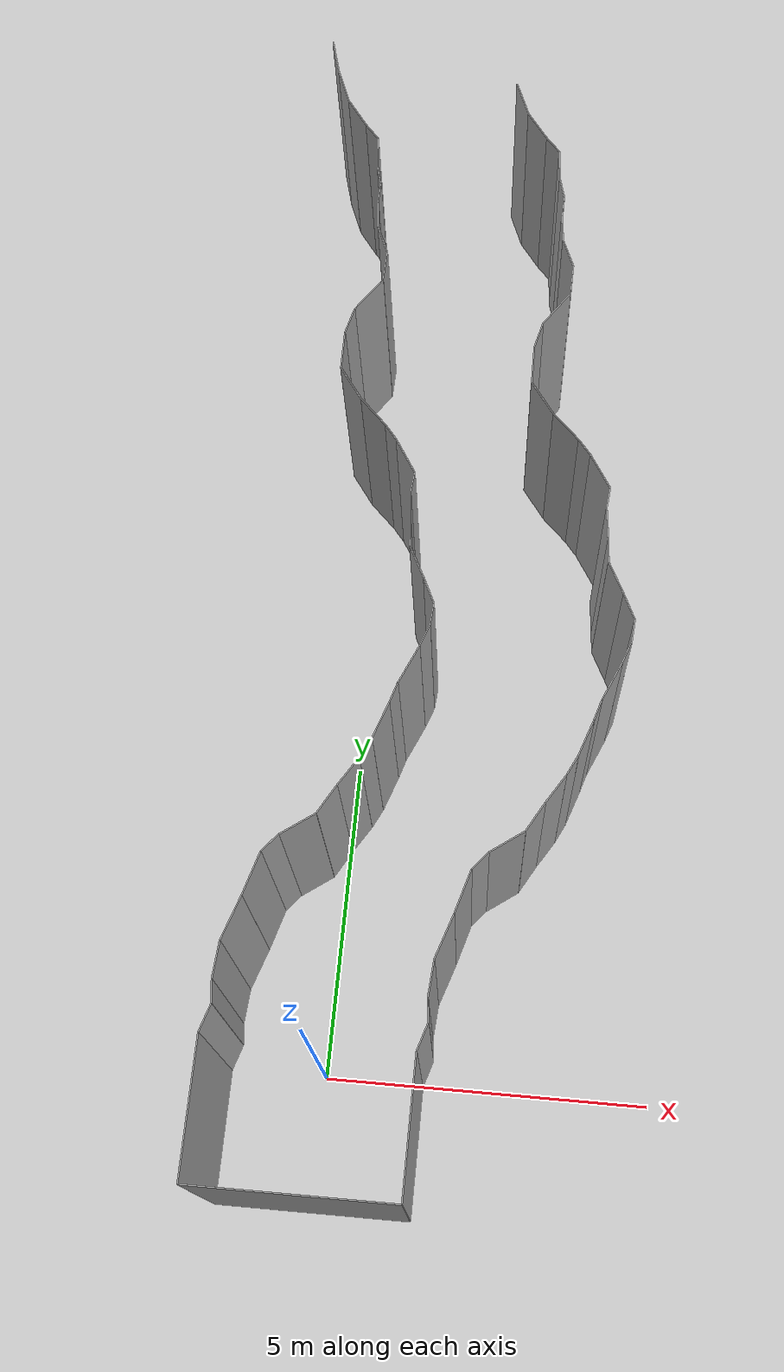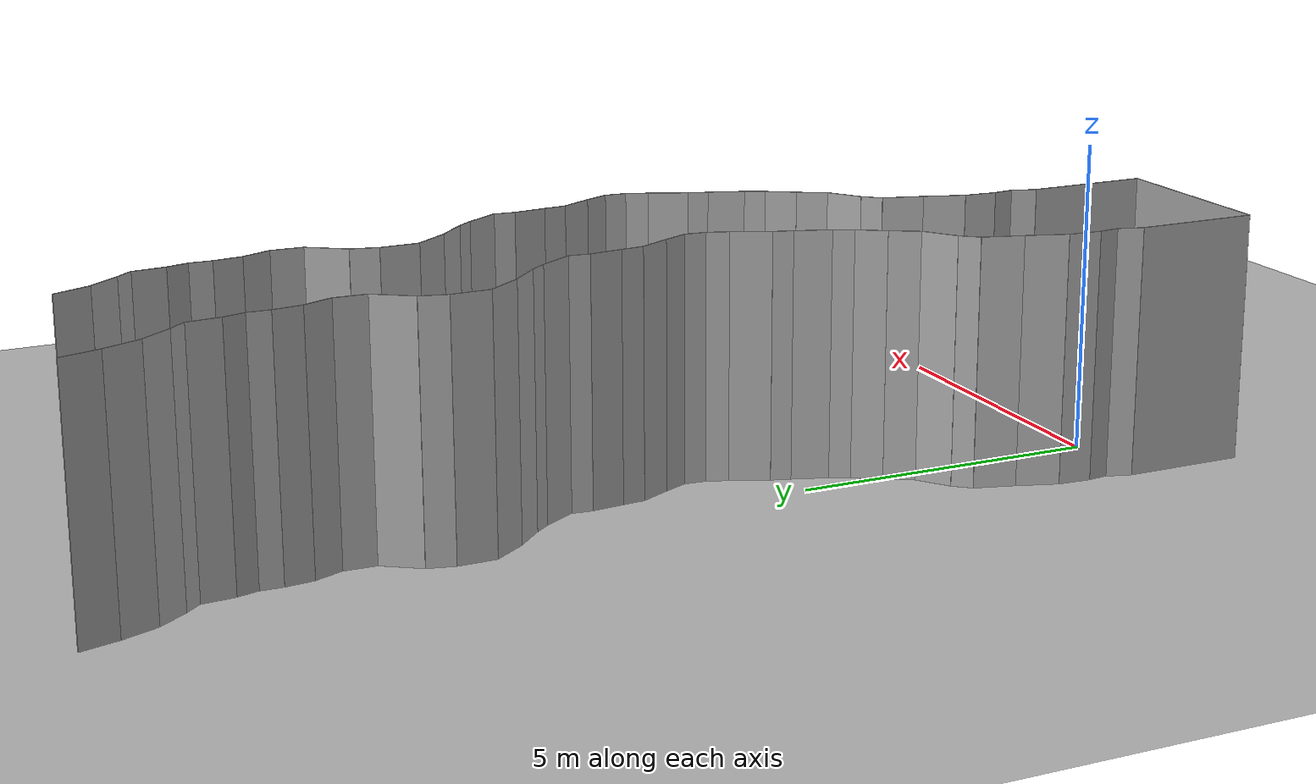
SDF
<sdf version="1.6">
 <world name="default">
  <model name="ground_plane">
   <static>1</static>
   <link name="link">
    <collision name="collision">
     <geometry><plane><normal>0 0 1</normal><size>200 200</size></plane></geometry>
     <surface><friction><ode><mu>100</mu><mu2>50</mu2></ode></friction></surface>
    </collision>
    <visual name="visual">
     <cast_shadows>0</cast_shadows>
     <geometry><plane><normal>0 0 1</normal><size>200 200</size></plane></geometry>
     <material>
      <script><uri>file://media/materials/scripts/gazebo.material</uri><name>Gazebo/Grey</name></script>
     </material>
    </visual>
   </link>
   <pose>0 100 0 0 -0 0</pose>
  </model>
  <model name="wall_back">
   <static>1</static>
   <pose>0.0 -2 2 0.0 0 0.0</pose>
   <link name="link">
    <collision name="collision"><geometry><box><size>3 0.02 4</size></box></geometry></collision>
    <visual name="visual">
     <material>
      <script><name>Gazebo/Grey</name><uri>file://media/materials/scripts/gazebo.material</uri></script>
     </material>
     <geometry><box><size>3 0.02 4</size></box></geometry>
    </visual>
   </link>
  </model>
  <model name="wall_left">
   <static>1</static>
   <pose>1.5 -1 2 0 0 0.00</pose>
   <link name="link">
    <collision name="collision"><geometry><box><size>0.02 2 4</size></box></geometry></collision>
    <visual name="visual">
     <material>
      <script><name>Gazebo/Grey</name><uri>file://media/materials/scripts/gazebo.material</uri></script>
     </material>
     <geometry><box><size>0.02 2 4</size></box></geometry>
    </visual>
   </link>
  </model>
  <model name="wall_right">
   <static>1</static>
   <pose>-1.5 -1 2 0 0 0.00</pose>
   <link name="link">
    <collision name="collision"><geometry><box><size>0.02 2 4</size></box></geometry></collision>
    <visual name="visual">
     <material>
      <script><name>Gazebo/Grey</name><uri>file://media/materials/scripts/gazebo.material</uri></script>
     </material>
     <geometry><box><size>0.02 2 4</size></box></geometry>
    </visual>
   </link>
  </model>
  <model name="wall_0">
   <static>1</static>
   <pose>-1.437584540808723 0.19914146632163043 2 0 0 -0.30372527100131724</pose>
   <link name="link">
    <collision name="collision"><geometry><box><size>0.02 0.41738717352 4</size></box></geometry></collision>
    <visual name="visual">
     <material>
      <script><name>Gazebo/Grey</name><uri>file://media/materials/scripts/gazebo.material</uri></script>
     </material>
     <geometry><box><size>0.02 0.41738717352 4</size></box></geometry>
    </visual>
   </link>
  </model>
  <model name="wall_1">
   <static>1</static>
   <pose>1.562415459191277 0.19914146632163043 2 0 0 -0.30372527100131724</pose>
   <link name="link">
    <collision name="collision"><geometry><box><size>0.02 0.41738717352 4</size></box></geometry></collision>
    <visual name="visual">
     <material>
      <script><name>Gazebo/Grey</name><uri>file://media/materials/scripts/gazebo.material</uri></script>
     </material>
     <geometry><box><size>0.02 0.41738717352 4</size></box></geometry>
    </visual>
   </link>
  </model>
  <model name="wall_2">
   <static>1</static>
   <pose>-1.3948634828476751 0.5653040838758768 2 0 0 0.11737362302510895</pose>
   <link name="link">
    <collision name="collision"><geometry><box><size>0.02 0.336356563182 4</size></box></geometry></collision>
    <visual name="visual">
     <material>
      <script><name>Gazebo/Grey</name><uri>file://media/materials/scripts/gazebo.material</uri></script>
     </material>
     <geometry><box><size>0.02 0.336356563182 4</size></box></geometry>
    </visual>
   </link>
  </model>
  <model name="wall_3">
   <static>1</static>
   <pose>1.6051365171523249 0.5653040838758768 2 0 0 0.11737362302510895</pose>
   <link name="link">
    <collision name="collision"><geometry><box><size>0.02 0.336356563182 4</size></box></geometry></collision>
    <visual name="visual">
     <material>
      <script><name>Gazebo/Grey</name><uri>file://media/materials/scripts/gazebo.material</uri></script>
     </material>
     <geometry><box><size>0.02 0.336356563182 4</size></box></geometry>
    </visual>
   </link>
  </model>
  <model name="wall_4">
   <static>1</static>
   <pose>-1.394409642289166 1.0028298655659633 2 0 0 -0.0743466219727799</pose>
   <link name="link">
    <collision name="collision"><geometry><box><size>0.02 0.542507904997 4</size></box></geometry></collision>
    <visual name="visual">
     <material>
      <script><name>Gazebo/Grey</name><uri>file://media/materials/scripts/gazebo.material</uri></script>
     </material>
     <geometry><box><size>0.02 0.542507904997 4</size></box></geometry>
    </visual>
   </link>
  </model>
  <model name="wall_5">
   <static>1</static>
   <pose>1.605590357710834 1.0028298655659633 2 0 0 -0.0743466219727799</pose>
   <link name="link">
    <collision name="collision"><geometry><box><size>0.02 0.542507904997 4</size></box></geometry></collision>
    <visual name="visual">
     <material>
      <script><name>Gazebo/Grey</name><uri>file://media/materials/scripts/gazebo.material</uri></script>
     </material>
     <geometry><box><size>0.02 0.542507904997 4</size></box></geometry>
    </visual>
   </link>
  </model>
  <model name="wall_6">
   <static>1</static>
   <pose>-1.2648227173220237 1.6014009821625925 2 0 0 -0.3219787499781896</pose>
   <link name="link">
    <collision name="collision"><geometry><box><size>0.02 0.691677510704 4</size></box></geometry></collision>
    <visual name="visual">
     <material>
      <script><name>Gazebo/Grey</name><uri>file://media/materials/scripts/gazebo.material</uri></script>
     </material>
     <geometry><box><size>0.02 0.691677510704 4</size></box></geometry>
    </visual>
   </link>
  </model>
  <model name="wall_7">
   <static>1</static>
   <pose>1.7351772826779763 1.6014009821625925 2 0 0 -0.3219787499781896</pose>
   <link name="link">
    <collision name="collision"><geometry><box><size>0.02 0.691677510704 4</size></box></geometry></collision>
    <visual name="visual">
     <material>
      <script><name>Gazebo/Grey</name><uri>file://media/materials/scripts/gazebo.material</uri></script>
     </material>
     <geometry><box><size>0.02 0.691677510704 4</size></box></geometry>
    </visual>
   </link>
  </model>
  <model name="wall_8">
   <static>1</static>
   <pose>-1.0613258140084927 2.2554493884134152 2 0 0 -0.28090844949199845</pose>
   <link name="link">
    <collision name="collision"><geometry><box><size>0.02 0.678560715086 4</size></box></geometry></collision>
    <visual name="visual">
     <material>
      <script><name>Gazebo/Grey</name><uri>file://media/materials/scripts/gazebo.material</uri></script>
     </material>
     <geometry><box><size>0.02 0.678560715086 4</size></box></geometry>
    </visual>
   </link>
  </model>
  <model name="wall_9">
   <static>1</static>
   <pose>1.9386741859915073 2.2554493884134152 2 0 0 -0.28090844949199845</pose>
   <link name="link">
    <collision name="collision"><geometry><box><size>0.02 0.678560715086 4</size></box></geometry></collision>
    <visual name="visual">
     <material>
      <script><name>Gazebo/Grey</name><uri>file://media/materials/scripts/gazebo.material</uri></script>
     </material>
     <geometry><box><size>0.02 0.678560715086 4</size></box></geometry>
    </visual>
   </link>
  </model>
  <model name="wall_10">
   <static>1</static>
   <pose>-0.8550352063341324 2.713623595888301 2 0 0 -0.7039182181570224</pose>
   <link name="link">
    <collision name="collision"><geometry><box><size>0.02 0.346819316942 4</size></box></geometry></collision>
    <visual name="visual">
     <material>
      <script><name>Gazebo/Grey</name><uri>file://media/materials/scripts/gazebo.material</uri></script>
     </material>
     <geometry><box><size>0.02 0.346819316942 4</size></box></geometry>
    </visual>
   </link>
  </model>
  <model name="wall_11">
   <static>1</static>
   <pose>2.1449647936658676 2.713623595888301 2 0 0 -0.7039182181570224</pose>
   <link name="link">
    <collision name="collision"><geometry><box><size>0.02 0.346819316942 4</size></box></geometry></collision>
    <visual name="visual">
     <material>
      <script><name>Gazebo/Grey</name><uri>file://media/materials/scripts/gazebo.material</uri></script>
     </material>
     <geometry><box><size>0.02 0.346819316942 4</size></box></geometry>
    </visual>
   </link>
  </model>
  <model name="wall_12">
   <static>1</static>
   <pose>-0.49591066048191346 3.0213233668450896 2 0 0 -0.9528142580755041</pose>
   <link name="link">
    <collision name="collision"><geometry><box><size>0.02 0.605833688841 4</size></box></geometry></collision>
    <visual name="visual">
     <material>
      <script><name>Gazebo/Grey</name><uri>file://media/materials/scripts/gazebo.material</uri></script>
     </material>
     <geometry><box><size>0.02 0.605833688841 4</size></box></geometry>
    </visual>
   </link>
  </model>
  <model name="wall_13">
   <static>1</static>
   <pose>2.5040893395180865 3.0213233668450896 2 0 0 -0.9528142580755041</pose>
   <link name="link">
    <collision name="collision"><geometry><box><size>0.02 0.605833688841 4</size></box></geometry></collision>
    <visual name="visual">
     <material>
      <script><name>Gazebo/Grey</name><uri>file://media/materials/scripts/gazebo.material</uri></script>
     </material>
     <geometry><box><size>0.02 0.605833688841 4</size></box></geometry>
    </visual>
   </link>
  </model>
  <model name="wall_14">
   <static>1</static>
   <pose>-0.1232289149607314 3.4174996638244646 2 0 0 -0.5180971347103647</pose>
   <link name="link">
    <collision name="collision"><geometry><box><size>0.02 0.508006871808 4</size></box></geometry></collision>
    <visual name="visual">
     <material>
      <script><name>Gazebo/Grey</name><uri>file://media/materials/scripts/gazebo.material</uri></script>
     </material>
     <geometry><box><size>0.02 0.508006871808 4</size></box></geometry>
    </visual>
   </link>
  </model>
  <model name="wall_15">
   <static>1</static>
   <pose>2.8767710850392687 3.4174996638244646 2 0 0 -0.5180971347103647</pose>
   <link name="link">
    <collision name="collision"><geometry><box><size>0.02 0.508006871808 4</size></box></geometry></collision>
    <visual name="visual">
     <material>
      <script><name>Gazebo/Grey</name><uri>file://media/materials/scripts/gazebo.material</uri></script>
     </material>
     <geometry><box><size>0.02 0.508006871808 4</size></box></geometry>
    </visual>
   </link>
  </model>
  <model name="wall_16">
   <static>1</static>
   <pose>0.13868933347629092 3.8528305048694746 2 0 0 -0.5651544958231043</pose>
   <link name="link">
    <collision name="collision"><geometry><box><size>0.02 0.508373085545 4</size></box></geometry></collision>
    <visual name="visual">
     <material>
      <script><name>Gazebo/Grey</name><uri>file://media/materials/scripts/gazebo.material</uri></script>
     </material>
     <geometry><box><size>0.02 0.508373085545 4</size></box></geometry>
    </visual>
   </link>
  </model>
  <model name="wall_17">
   <static>1</static>
   <pose>3.138689333476291 3.8528305048694746 2 0 0 -0.5651544958231043</pose>
   <link name="link">
    <collision name="collision"><geometry><box><size>0.02 0.508373085545 4</size></box></geometry></collision>
    <visual name="visual">
     <material>
      <script><name>Gazebo/Grey</name><uri>file://media/materials/scripts/gazebo.material</uri></script>
     </material>
     <geometry><box><size>0.02 0.508373085545 4</size></box></geometry>
    </visual>
   </link>
  </model>
  <model name="wall_18">
   <static>1</static>
   <pose>0.3503488147982492 4.220972523937231 2 0 0 -0.4573250543680752</pose>
   <link name="link">
    <collision name="collision"><geometry><box><size>0.02 0.34211701242 4</size></box></geometry></collision>
    <visual name="visual">
     <material>
      <script><name>Gazebo/Grey</name><uri>file://media/materials/scripts/gazebo.material</uri></script>
     </material>
     <geometry><box><size>0.02 0.34211701242 4</size></box></geometry>
    </visual>
   </link>
  </model>
  <model name="wall_19">
   <static>1</static>
   <pose>3.350348814798249 4.220972523937231 2 0 0 -0.4573250543680752</pose>
   <link name="link">
    <collision name="collision"><geometry><box><size>0.02 0.34211701242 4</size></box></geometry></collision>
    <visual name="visual">
     <material>
      <script><name>Gazebo/Grey</name><uri>file://media/materials/scripts/gazebo.material</uri></script>
     </material>
     <geometry><box><size>0.02 0.34211701242 4</size></box></geometry>
    </visual>
   </link>
  </model>
  <model name="wall_20">
   <static>1</static>
   <pose>0.5238072433691114 4.657932478540906 2 0 0 -0.33261391376609967</pose>
   <link name="link">
    <collision name="collision"><geometry><box><size>0.02 0.599835664279 4</size></box></geometry></collision>
    <visual name="visual">
     <material>
      <script><name>Gazebo/Grey</name><uri>file://media/materials/scripts/gazebo.material</uri></script>
     </material>
     <geometry><box><size>0.02 0.599835664279 4</size></box></geometry>
    </visual>
   </link>
  </model>
  <model name="wall_21">
   <static>1</static>
   <pose>3.523807243369111 4.657932478540906 2 0 0 -0.33261391376609967</pose>
   <link name="link">
    <collision name="collision"><geometry><box><size>0.02 0.599835664279 4</size></box></geometry></collision>
    <visual name="visual">
     <material>
      <script><name>Gazebo/Grey</name><uri>file://media/materials/scripts/gazebo.material</uri></script>
     </material>
     <geometry><box><size>0.02 0.599835664279 4</size></box></geometry>
    </visual>
   </link>
  </model>
  <model name="wall_22">
   <static>1</static>
   <pose>0.6687756915646734 5.097011091971359 2 0 0 -0.29358537960156844</pose>
   <link name="link">
    <collision name="collision"><geometry><box><size>0.02 0.325107862448 4</size></box></geometry></collision>
    <visual name="visual">
     <material>
      <script><name>Gazebo/Grey</name><uri>file://media/materials/scripts/gazebo.material</uri></script>
     </material>
     <geometry><box><size>0.02 0.325107862448 4</size></box></geometry>
    </visual>
   </link>
  </model>
  <model name="wall_23">
   <static>1</static>
   <pose>3.668775691564673 5.097011091971359 2 0 0 -0.29358537960156844</pose>
   <link name="link">
    <collision name="collision"><geometry><box><size>0.02 0.325107862448 4</size></box></geometry></collision>
    <visual name="visual">
     <material>
      <script><name>Gazebo/Grey</name><uri>file://media/materials/scripts/gazebo.material</uri></script>
     </material>
     <geometry><box><size>0.02 0.325107862448 4</size></box></geometry>
    </visual>
   </link>
  </model>
  <model name="wall_24">
   <static>1</static>
   <pose>0.8478761278525622 5.553248437661183 2 0 0 -0.413889641027671</pose>
   <link name="link">
    <collision name="collision"><geometry><box><size>0.02 0.656729357501 4</size></box></geometry></collision>
    <visual name="visual">
     <material>
      <script><name>Gazebo/Grey</name><uri>file://media/materials/scripts/gazebo.material</uri></script>
     </material>
     <geometry><box><size>0.02 0.656729357501 4</size></box></geometry>
    </visual>
   </link>
  </model>
  <model name="wall_25">
   <static>1</static>
   <pose>3.847876127852562 5.553248437661183 2 0 0 -0.413889641027671</pose>
   <link name="link">
    <collision name="collision"><geometry><box><size>0.02 0.656729357501 4</size></box></geometry></collision>
    <visual name="visual">
     <material>
      <script><name>Gazebo/Grey</name><uri>file://media/materials/scripts/gazebo.material</uri></script>
     </material>
     <geometry><box><size>0.02 0.656729357501 4</size></box></geometry>
    </visual>
   </link>
  </model>
  <model name="wall_26">
   <static>1</static>
   <pose>1.0405157936755771 6.02449647832085 2 0 0 -0.3411937799384117</pose>
   <link name="link">
    <collision name="collision"><geometry><box><size>0.02 0.362091112633 4</size></box></geometry></collision>
    <visual name="visual">
     <material>
      <script><name>Gazebo/Grey</name><uri>file://media/materials/scripts/gazebo.material</uri></script>
     </material>
     <geometry><box><size>0.02 0.362091112633 4</size></box></geometry>
    </visual>
   </link>
  </model>
  <model name="wall_27">
   <static>1</static>
   <pose>4.040515793675577 6.02449647832085 2 0 0 -0.3411937799384117</pose>
   <link name="link">
    <collision name="collision"><geometry><box><size>0.02 0.362091112633 4</size></box></geometry></collision>
    <visual name="visual">
     <material>
      <script><name>Gazebo/Grey</name><uri>file://media/materials/scripts/gazebo.material</uri></script>
     </material>
     <geometry><box><size>0.02 0.362091112633 4</size></box></geometry>
    </visual>
   </link>
  </model>
  <model name="wall_28">
   <static>1</static>
   <pose>1.1144388519540367 6.371388264647776 2 0 0 -0.07554691758566276</pose>
   <link name="link">
    <collision name="collision"><geometry><box><size>0.02 0.353573383636 4</size></box></geometry></collision>
    <visual name="visual">
     <material>
      <script><name>Gazebo/Grey</name><uri>file://media/materials/scripts/gazebo.material</uri></script>
     </material>
     <geometry><box><size>0.02 0.353573383636 4</size></box></geometry>
    </visual>
   </link>
  </model>
  <model name="wall_29">
   <static>1</static>
   <pose>4.114438851954037 6.371388264647776 2 0 0 -0.07554691758566276</pose>
   <link name="link">
    <collision name="collision"><geometry><box><size>0.02 0.353573383636 4</size></box></geometry></collision>
    <visual name="visual">
     <material>
      <script><name>Gazebo/Grey</name><uri>file://media/materials/scripts/gazebo.material</uri></script>
     </material>
     <geometry><box><size>0.02 0.353573383636 4</size></box></geometry>
    </visual>
   </link>
  </model>
  <model name="wall_30">
   <static>1</static>
   <pose>1.033647632054986 6.745813201294141 2 0 0 0.4435163748197816</pose>
   <link name="link">
    <collision name="collision"><geometry><box><size>0.02 0.43873316639 4</size></box></geometry></collision>
    <visual name="visual">
     <material>
      <script><name>Gazebo/Grey</name><uri>file://media/materials/scripts/gazebo.material</uri></script>
     </material>
     <geometry><box><size>0.02 0.43873316639 4</size></box></geometry>
    </visual>
   </link>
  </model>
  <model name="wall_31">
   <static>1</static>
   <pose>4.033647632054986 6.745813201294141 2 0 0 0.4435163748197816</pose>
   <link name="link">
    <collision name="collision"><geometry><box><size>0.02 0.43873316639 4</size></box></geometry></collision>
    <visual name="visual">
     <material>
      <script><name>Gazebo/Grey</name><uri>file://media/materials/scripts/gazebo.material</uri></script>
     </material>
     <geometry><box><size>0.02 0.43873316639 4</size></box></geometry>
    </visual>
   </link>
  </model>
  <model name="wall_32">
   <static>1</static>
   <pose>0.8125762892889469 7.190634687882686 2 0 0 0.47524685223339913</pose>
   <link name="link">
    <collision name="collision"><geometry><box><size>0.02 0.554846142927 4</size></box></geometry></collision>
    <visual name="visual">
     <material>
      <script><name>Gazebo/Grey</name><uri>file://media/materials/scripts/gazebo.material</uri></script>
     </material>
     <geometry><box><size>0.02 0.554846142927 4</size></box></geometry>
    </visual>
   </link>
  </model>
  <model name="wall_33">
   <static>1</static>
   <pose>3.812576289288947 7.190634687882686 2 0 0 0.47524685223339913</pose>
   <link name="link">
    <collision name="collision"><geometry><box><size>0.02 0.554846142927 4</size></box></geometry></collision>
    <visual name="visual">
     <material>
      <script><name>Gazebo/Grey</name><uri>file://media/materials/scripts/gazebo.material</uri></script>
     </material>
     <geometry><box><size>0.02 0.554846142927 4</size></box></geometry>
    </visual>
   </link>
  </model>
  <model name="wall_34">
   <static>1</static>
   <pose>0.6719074328562987 7.618957834760673 2 0 0 0.07545331405848138</pose>
   <link name="link">
    <collision name="collision"><geometry><box><size>0.02 0.364324907448 4</size></box></geometry></collision>
    <visual name="visual">
     <material>
      <script><name>Gazebo/Grey</name><uri>file://media/materials/scripts/gazebo.material</uri></script>
     </material>
     <geometry><box><size>0.02 0.364324907448 4</size></box></geometry>
    </visual>
   </link>
  </model>
  <model name="wall_35">
   <static>1</static>
   <pose>3.671907432856299 7.618957834760673 2 0 0 0.07545331405848138</pose>
   <link name="link">
    <collision name="collision"><geometry><box><size>0.02 0.364324907448 4</size></box></geometry></collision>
    <visual name="visual">
     <material>
      <script><name>Gazebo/Grey</name><uri>file://media/materials/scripts/gazebo.material</uri></script>
     </material>
     <geometry><box><size>0.02 0.364324907448 4</size></box></geometry>
    </visual>
   </link>
  </model>
  <model name="wall_36">
   <static>1</static>
   <pose>0.6308984654413259 8.063215261044814 2 0 0 0.10349735906878753</pose>
   <link name="link">
    <collision name="collision"><geometry><box><size>0.02 0.528052186482 4</size></box></geometry></collision>
    <visual name="visual">
     <material>
      <script><name>Gazebo/Grey</name><uri>file://media/materials/scripts/gazebo.material</uri></script>
     </material>
     <geometry><box><size>0.02 0.528052186482 4</size></box></geometry>
    </visual>
   </link>
  </model>
  <model name="wall_37">
   <static>1</static>
   <pose>3.6308984654413257 8.063215261044814 2 0 0 0.10349735906878753</pose>
   <link name="link">
    <collision name="collision"><geometry><box><size>0.02 0.528052186482 4</size></box></geometry></collision>
    <visual name="visual">
     <material>
      <script><name>Gazebo/Grey</name><uri>file://media/materials/scripts/gazebo.material</uri></script>
     </material>
     <geometry><box><size>0.02 0.528052186482 4</size></box></geometry>
    </visual>
   </link>
  </model>
  <model name="wall_38">
   <static>1</static>
   <pose>0.6196103875067481 8.495250098855857 2 0 0 -0.09409633765073891</pose>
   <link name="link">
    <collision name="collision"><geometry><box><size>0.02 0.340348767814 4</size></box></geometry></collision>
    <visual name="visual">
     <material>
      <script><name>Gazebo/Grey</name><uri>file://media/materials/scripts/gazebo.material</uri></script>
     </material>
     <geometry><box><size>0.02 0.340348767814 4</size></box></geometry>
    </visual>
   </link>
  </model>
  <model name="wall_39">
   <static>1</static>
   <pose>3.6196103875067482 8.495250098855857 2 0 0 -0.09409633765073891</pose>
   <link name="link">
    <collision name="collision"><geometry><box><size>0.02 0.340348767814 4</size></box></geometry></collision>
    <visual name="visual">
     <material>
      <script><name>Gazebo/Grey</name><uri>file://media/materials/scripts/gazebo.material</uri></script>
     </material>
     <geometry><box><size>0.02 0.340348767814 4</size></box></geometry>
    </visual>
   </link>
  </model>
  <model name="wall_40">
   <static>1</static>
   <pose>0.4683702272360365 8.930815091683186 2 0 0 0.560999575177464</pose>
   <link name="link">
    <collision name="collision"><geometry><box><size>0.02 0.628642890016 4</size></box></geometry></collision>
    <visual name="visual">
     <material>
      <script><name>Gazebo/Grey</name><uri>file://media/materials/scripts/gazebo.material</uri></script>
     </material>
     <geometry><box><size>0.02 0.628642890016 4</size></box></geometry>
    </visual>
   </link>
  </model>
  <model name="wall_41">
   <static>1</static>
   <pose>3.4683702272360364 8.930815091683186 2 0 0 0.560999575177464</pose>
   <link name="link">
    <collision name="collision"><geometry><box><size>0.02 0.628642890016 4</size></box></geometry></collision>
    <visual name="visual">
     <material>
      <script><name>Gazebo/Grey</name><uri>file://media/materials/scripts/gazebo.material</uri></script>
     </material>
     <geometry><box><size>0.02 0.628642890016 4</size></box></geometry>
    </visual>
   </link>
  </model>
  <model name="wall_42">
   <static>1</static>
   <pose>0.20286799794410917 9.317444267156924 2 0 0 0.6842045653073365</pose>
   <link name="link">
    <collision name="collision"><geometry><box><size>0.02 0.310962243647 4</size></box></geometry></collision>
    <visual name="visual">
     <material>
      <script><name>Gazebo/Grey</name><uri>file://media/materials/scripts/gazebo.material</uri></script>
     </material>
     <geometry><box><size>0.02 0.310962243647 4</size></box></geometry>
    </visual>
   </link>
  </model>
  <model name="wall_43">
   <static>1</static>
   <pose>3.202867997944109 9.317444267156924 2 0 0 0.6842045653073365</pose>
   <link name="link">
    <collision name="collision"><geometry><box><size>0.02 0.310962243647 4</size></box></geometry></collision>
    <visual name="visual">
     <material>
      <script><name>Gazebo/Grey</name><uri>file://media/materials/scripts/gazebo.material</uri></script>
     </material>
     <geometry><box><size>0.02 0.310962243647 4</size></box></geometry>
    </visual>
   </link>
  </model>
  <model name="wall_44">
   <static>1</static>
   <pose>-0.10581616463823756 9.644450860844644 2 0 0 0.7947289484488541</pose>
   <link name="link">
    <collision name="collision"><geometry><box><size>0.02 0.589656704895 4</size></box></geometry></collision>
    <visual name="visual">
     <material>
      <script><name>Gazebo/Grey</name><uri>file://media/materials/scripts/gazebo.material</uri></script>
     </material>
     <geometry><box><size>0.02 0.589656704895 4</size></box></geometry>
    </visual>
   </link>
  </model>
  <model name="wall_45">
   <static>1</static>
   <pose>2.8941838353617624 9.644450860844644 2 0 0 0.7947289484488541</pose>
   <link name="link">
    <collision name="collision"><geometry><box><size>0.02 0.589656704895 4</size></box></geometry></collision>
    <visual name="visual">
     <material>
      <script><name>Gazebo/Grey</name><uri>file://media/materials/scripts/gazebo.material</uri></script>
     </material>
     <geometry><box><size>0.02 0.589656704895 4</size></box></geometry>
    </visual>
   </link>
  </model>
  <model name="wall_46">
   <static>1</static>
   <pose>-0.5037890396391627 10.109348792570279 2 0 0 0.6279122752231615</pose>
   <link name="link">
    <collision name="collision"><geometry><box><size>0.02 0.638554864892 4</size></box></geometry></collision>
    <visual name="visual">
     <material>
      <script><name>Gazebo/Grey</name><uri>file://media/materials/scripts/gazebo.material</uri></script>
     </material>
     <geometry><box><size>0.02 0.638554864892 4</size></box></geometry>
    </visual>
   </link>
  </model>
  <model name="wall_47">
   <static>1</static>
   <pose>2.4962109603608376 10.109348792570279 2 0 0 0.6279122752231615</pose>
   <link name="link">
    <collision name="collision"><geometry><box><size>0.02 0.638554864892 4</size></box></geometry></collision>
    <visual name="visual">
     <material>
      <script><name>Gazebo/Grey</name><uri>file://media/materials/scripts/gazebo.material</uri></script>
     </material>
     <geometry><box><size>0.02 0.638554864892 4</size></box></geometry>
    </visual>
   </link>
  </model>
  <model name="wall_48">
   <static>1</static>
   <pose>-0.6948387642877629 10.679753031650474 2 0 0 0.011178401615070197</pose>
   <link name="link">
    <collision name="collision"><geometry><box><size>0.02 0.624093294011 4</size></box></geometry></collision>
    <visual name="visual">
     <material>
      <script><name>Gazebo/Grey</name><uri>file://media/materials/scripts/gazebo.material</uri></script>
     </material>
     <geometry><box><size>0.02 0.624093294011 4</size></box></geometry>
    </visual>
   </link>
  </model>
  <model name="wall_49">
   <static>1</static>
   <pose>2.3051612357122373 10.679753031650474 2 0 0 0.011178401615070197</pose>
   <link name="link">
    <collision name="collision"><geometry><box><size>0.02 0.624093294011 4</size></box></geometry></collision>
    <visual name="visual">
     <material>
      <script><name>Gazebo/Grey</name><uri>file://media/materials/scripts/gazebo.material</uri></script>
     </material>
     <geometry><box><size>0.02 0.624093294011 4</size></box></geometry>
    </visual>
   </link>
  </model>
  <model name="wall_50">
   <static>1</static>
   <pose>-0.6452960002771193 11.209639009271081 2 0 0 -0.23877480551436756</pose>
   <link name="link">
    <collision name="collision"><geometry><box><size>0.02 0.448440595492 4</size></box></geometry></collision>
    <visual name="visual">
     <material>
      <script><name>Gazebo/Grey</name><uri>file://media/materials/scripts/gazebo.material</uri></script>
     </material>
     <geometry><box><size>0.02 0.448440595492 4</size></box></geometry>
    </visual>
   </link>
  </model>
  <model name="wall_51">
   <static>1</static>
   <pose>2.3547039997228807 11.209639009271081 2 0 0 -0.23877480551436756</pose>
   <link name="link">
    <collision name="collision"><geometry><box><size>0.02 0.448440595492 4</size></box></geometry></collision>
    <visual name="visual">
     <material>
      <script><name>Gazebo/Grey</name><uri>file://media/materials/scripts/gazebo.material</uri></script>
     </material>
     <geometry><box><size>0.02 0.448440595492 4</size></box></geometry>
    </visual>
   </link>
  </model>
  <model name="wall_52">
   <static>1</static>
   <pose>-0.3955156095086415 11.714015931435297 2 0 0 -0.6017380735763075</pose>
   <link name="link">
    <collision name="collision"><geometry><box><size>0.02 0.695134494645 4</size></box></geometry></collision>
    <visual name="visual">
     <material>
      <script><name>Gazebo/Grey</name><uri>file://media/materials/scripts/gazebo.material</uri></script>
     </material>
     <geometry><box><size>0.02 0.695134494645 4</size></box></geometry>
    </visual>
   </link>
  </model>
  <model name="wall_53">
   <static>1</static>
   <pose>2.6044843904913586 11.714015931435297 2 0 0 -0.6017380735763075</pose>
   <link name="link">
    <collision name="collision"><geometry><box><size>0.02 0.695134494645 4</size></box></geometry></collision>
    <visual name="visual">
     <material>
      <script><name>Gazebo/Grey</name><uri>file://media/materials/scripts/gazebo.material</uri></script>
     </material>
     <geometry><box><size>0.02 0.695134494645 4</size></box></geometry>
    </visual>
   </link>
  </model>
  <model name="wall_54">
   <static>1</static>
   <pose>-0.19075975531527672 12.260493217715691 2 0 0 -0.03078870763558765</pose>
   <link name="link">
    <collision name="collision"><geometry><box><size>0.02 0.520164905624 4</size></box></geometry></collision>
    <visual name="visual">
     <material>
      <script><name>Gazebo/Grey</name><uri>file://media/materials/scripts/gazebo.material</uri></script>
     </material>
     <geometry><box><size>0.02 0.520164905624 4</size></box></geometry>
    </visual>
   </link>
  </model>
  <model name="wall_55">
   <static>1</static>
   <pose>2.809240244684723 12.260493217715691 2 0 0 -0.03078870763558765</pose>
   <link name="link">
    <collision name="collision"><geometry><box><size>0.02 0.520164905624 4</size></box></geometry></collision>
    <visual name="visual">
     <material>
      <script><name>Gazebo/Grey</name><uri>file://media/materials/scripts/gazebo.material</uri></script>
     </material>
     <geometry><box><size>0.02 0.520164905624 4</size></box></geometry>
    </visual>
   </link>
  </model>
  <model name="wall_56">
   <static>1</static>
   <pose>-0.28001308719649437 12.752248717716782 2 0 0 0.39728035864173306</pose>
   <link name="link">
    <collision name="collision"><geometry><box><size>0.02 0.502748335885 4</size></box></geometry></collision>
    <visual name="visual">
     <material>
      <script><name>Gazebo/Grey</name><uri>file://media/materials/scripts/gazebo.material</uri></script>
     </material>
     <geometry><box><size>0.02 0.502748335885 4</size></box></geometry>
    </visual>
   </link>
  </model>
  <model name="wall_57">
   <static>1</static>
   <pose>2.7199869128035057 12.752248717716782 2 0 0 0.39728035864173306</pose>
   <link name="link">
    <collision name="collision"><geometry><box><size>0.02 0.502748335885 4</size></box></geometry></collision>
    <visual name="visual">
     <material>
      <script><name>Gazebo/Grey</name><uri>file://media/materials/scripts/gazebo.material</uri></script>
     </material>
     <geometry><box><size>0.02 0.502748335885 4</size></box></geometry>
    </visual>
   </link>
  </model>
  <model name="wall_58">
   <static>1</static>
   <pose>-0.40231754583288504 13.21279266981115 2 0 0 0.10905218262741671</pose>
   <link name="link">
    <collision name="collision"><geometry><box><size>0.02 0.460229184396 4</size></box></geometry></collision>
    <visual name="visual">
     <material>
      <script><name>Gazebo/Grey</name><uri>file://media/materials/scripts/gazebo.material</uri></script>
     </material>
     <geometry><box><size>0.02 0.460229184396 4</size></box></geometry>
    </visual>
   </link>
  </model>
  <model name="wall_59">
   <static>1</static>
   <pose>2.597682454167115 13.21279266981115 2 0 0 0.10905218262741671</pose>
   <link name="link">
    <collision name="collision"><geometry><box><size>0.02 0.460229184396 4</size></box></geometry></collision>
    <visual name="visual">
     <material>
      <script><name>Gazebo/Grey</name><uri>file://media/materials/scripts/gazebo.material</uri></script>
     </material>
     <geometry><box><size>0.02 0.460229184396 4</size></box></geometry>
    </visual>
   </link>
  </model>
  <model name="wall_60">
   <static>1</static>
   <pose>-0.4219806242729626 13.620806420169737 2 0 0 -0.030011779558620038</pose>
   <link name="link">
    <collision name="collision"><geometry><box><size>0.02 0.358693742009 4</size></box></geometry></collision>
    <visual name="visual">
     <material>
      <script><name>Gazebo/Grey</name><uri>file://media/materials/scripts/gazebo.material</uri></script>
     </material>
     <geometry><box><size>0.02 0.358693742009 4</size></box></geometry>
    </visual>
   </link>
  </model>
  <model name="wall_61">
   <static>1</static>
   <pose>2.5780193757270373 13.620806420169737 2 0 0 -0.030011779558620038</pose>
   <link name="link">
    <collision name="collision"><geometry><box><size>0.02 0.358693742009 4</size></box></geometry></collision>
    <visual name="visual">
     <material>
      <script><name>Gazebo/Grey</name><uri>file://media/materials/scripts/gazebo.material</uri></script>
     </material>
     <geometry><box><size>0.02 0.358693742009 4</size></box></geometry>
    </visual>
   </link>
  </model>
  <model name="wall_62">
   <static>1</static>
   <pose>-0.46280024762188854 13.97133946094752 2 0 0 0.2634901214733112</pose>
   <link name="link">
    <collision name="collision"><geometry><box><size>0.02 0.354778385369 4</size></box></geometry></collision>
    <visual name="visual">
     <material>
      <script><name>Gazebo/Grey</name><uri>file://media/materials/scripts/gazebo.material</uri></script>
     </material>
     <geometry><box><size>0.02 0.354778385369 4</size></box></geometry>
    </visual>
   </link>
  </model>
  <model name="wall_63">
   <static>1</static>
   <pose>2.5371997523781116 13.97133946094752 2 0 0 0.2634901214733112</pose>
   <link name="link">
    <collision name="collision"><geometry><box><size>0.02 0.354778385369 4</size></box></geometry></collision>
    <visual name="visual">
     <material>
      <script><name>Gazebo/Grey</name><uri>file://media/materials/scripts/gazebo.material</uri></script>
     </material>
     <geometry><box><size>0.02 0.354778385369 4</size></box></geometry>
    </visual>
   </link>
  </model>
  <model name="wall_64">
   <static>1</static>
   <pose>-0.531159644609888 14.405146660467546 2 0 0 0.08419917901794643</pose>
   <link name="link">
    <collision name="collision"><geometry><box><size>0.02 0.526947326369 4</size></box></geometry></collision>
    <visual name="visual">
     <material>
      <script><name>Gazebo/Grey</name><uri>file://media/materials/scripts/gazebo.material</uri></script>
     </material>
     <geometry><box><size>0.02 0.526947326369 4</size></box></geometry>
    </visual>
   </link>
  </model>
  <model name="wall_65">
   <static>1</static>
   <pose>2.468840355390112 14.405146660467546 2 0 0 0.08419917901794643</pose>
   <link name="link">
    <collision name="collision"><geometry><box><size>0.02 0.526947326369 4</size></box></geometry></collision>
    <visual name="visual">
     <material>
      <script><name>Gazebo/Grey</name><uri>file://media/materials/scripts/gazebo.material</uri></script>
     </material>
     <geometry><box><size>0.02 0.526947326369 4</size></box></geometry>
    </visual>
   </link>
  </model>
  <model name="wall_66">
   <static>1</static>
   <pose>-0.6654433372051671 14.791857538890236 2 0 0 0.7344681692740425</pose>
   <link name="link">
    <collision name="collision"><geometry><box><size>0.02 0.334607219005 4</size></box></geometry></collision>
    <visual name="visual">
     <material>
      <script><name>Gazebo/Grey</name><uri>file://media/materials/scripts/gazebo.material</uri></script>
     </material>
     <geometry><box><size>0.02 0.334607219005 4</size></box></geometry>
    </visual>
   </link>
  </model>
  <model name="wall_67">
   <static>1</static>
   <pose>2.334556662794833 14.791857538890236 2 0 0 0.7344681692740425</pose>
   <link name="link">
    <collision name="collision"><geometry><box><size>0.02 0.334607219005 4</size></box></geometry></collision>
    <visual name="visual">
     <material>
      <script><name>Gazebo/Grey</name><uri>file://media/materials/scripts/gazebo.material</uri></script>
     </material>
     <geometry><box><size>0.02 0.334607219005 4</size></box></geometry>
    </visual>
   </link>
  </model>
  <model name="wall_68">
   <static>1</static>
   <pose>-0.9462538041430467 15.141657639436584 2 0 0 0.6419753691294969</pose>
   <link name="link">
    <collision name="collision"><geometry><box><size>0.02 0.563429641958 4</size></box></geometry></collision>
    <visual name="visual">
     <material>
      <script><name>Gazebo/Grey</name><uri>file://media/materials/scripts/gazebo.material</uri></script>
     </material>
     <geometry><box><size>0.02 0.563429641958 4</size></box></geometry>
    </visual>
   </link>
  </model>
  <model name="wall_69">
   <static>1</static>
   <pose>2.053746195856953 15.141657639436584 2 0 0 0.6419753691294969</pose>
   <link name="link">
    <collision name="collision"><geometry><box><size>0.02 0.563429641958 4</size></box></geometry></collision>
    <visual name="visual">
     <material>
      <script><name>Gazebo/Grey</name><uri>file://media/materials/scripts/gazebo.material</uri></script>
     </material>
     <geometry><box><size>0.02 0.563429641958 4</size></box></geometry>
    </visual>
   </link>
  </model>
  <model name="wall_70">
   <static>1</static>
   <pose>-1.2304791952523164 15.65304504788151 2 0 0 0.3842337161596434</pose>
   <link name="link">
    <collision name="collision"><geometry><box><size>0.02 0.616464787114 4</size></box></geometry></collision>
    <visual name="visual">
     <material>
      <script><name>Gazebo/Grey</name><uri>file://media/materials/scripts/gazebo.material</uri></script>
     </material>
     <geometry><box><size>0.02 0.616464787114 4</size></box></geometry>
    </visual>
   </link>
  </model>
  <model name="wall_71">
   <static>1</static>
   <pose>1.7695208047476836 15.65304504788151 2 0 0 0.3842337161596434</pose>
   <link name="link">
    <collision name="collision"><geometry><box><size>0.02 0.616464787114 4</size></box></geometry></collision>
    <visual name="visual">
     <material>
      <script><name>Gazebo/Grey</name><uri>file://media/materials/scripts/gazebo.material</uri></script>
     </material>
     <geometry><box><size>0.02 0.616464787114 4</size></box></geometry>
    </visual>
   </link>
  </model>
  <model name="wall_72">
   <static>1</static>
   <pose>-1.4282986551377834 16.238100182832095 2 0 0 0.2682797676968485</pose>
   <link name="link">
    <collision name="collision"><geometry><box><size>0.02 0.620801550412 4</size></box></geometry></collision>
    <visual name="visual">
     <material>
      <script><name>Gazebo/Grey</name><uri>file://media/materials/scripts/gazebo.material</uri></script>
     </material>
     <geometry><box><size>0.02 0.620801550412 4</size></box></geometry>
    </visual>
   </link>
  </model>
 </world>
</sdf>
